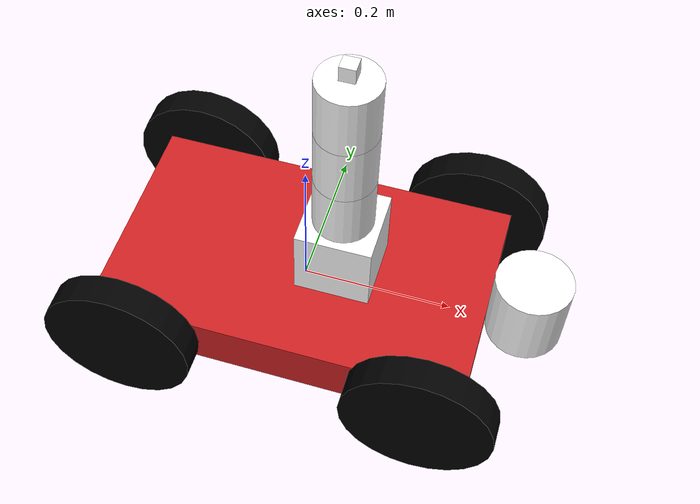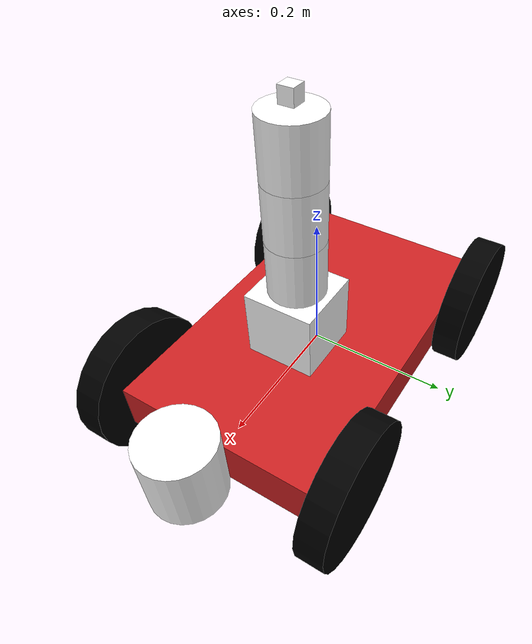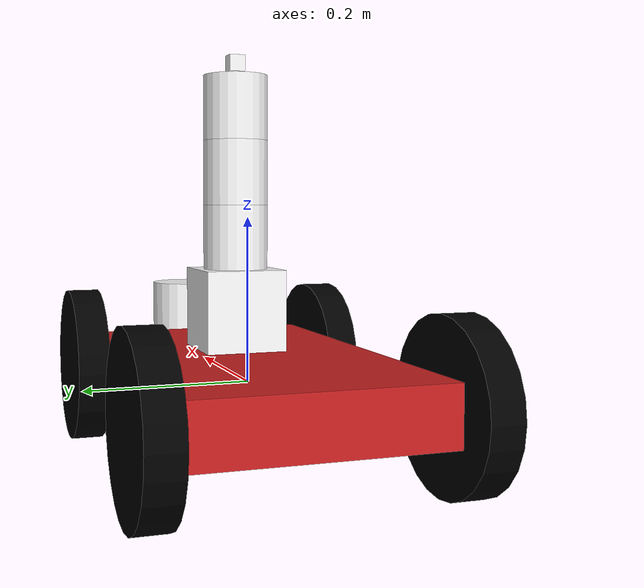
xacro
<?xml version="1.0" ?>
<robot name="m2wr" xmlns:xacro="https://www.ros.org/wiki/xacro" >

 <xacro:include filename="$(find surveillance_fsm_robot)/urdf/materials.xacro" />
 <xacro:include filename="$(find surveillance_fsm_robot)/urdf/m2wr_arm2.gazebo" />

 <xacro:macro name="cylinder_inertia" params="mass r l">
    <inertia ixx="${mass*(3*r*r+l*l)/12}" ixy = "0" ixz = "0"
                iyy="${mass*(3*r*r+l*l)/12}" iyz = "0" izz="${mass*(r*r)/2}" />
 </xacro:macro>

    	<xacro:property name="length_wheel" value="0.04" />
	<xacro:property name="radius_wheel" value="0.1" />

	<xacro:macro name="default_inertial" params="mass">
               <inertial>
                       <mass value="${mass}" />
                       <origin rpy="0 1.5707 1.5707" xyz="0 0 0"/>
                       <inertia ixx="0.000526666666667" ixy="0" ixz="0" iyy="0.000526666666667" iyz="0" izz="0.001"/>
               </inertial>
	</xacro:macro>

    <xacro:macro name="wheel_geometry">
		<geometry>
       			<cylinder length="${length_wheel}" radius="${radius_wheel}"/>
     	</geometry>
	</xacro:macro>

	  <link name="base_link">
    <!-- pose and inertial -->
    <pose>0 0 0.1 0 0 0</pose>
    <inertial>
      <mass value="5"/>
      <origin rpy="0 0 0" xyz="0 0 0.1"/>
      <inertia ixx="0.0395416666667" ixy="0" ixz="0" iyy="0.106208333333" iyz="0" izz="0.106208333333"/>
    </inertial>
    <!-- body -->
    <collision name="collision_chassis">
      <geometry>
        <box size="0.5 0.3 0.07"/>
      </geometry>
    </collision>
    <visual>
      <origin rpy="0 0 0" xyz="0 0 0"/>
      <geometry>
        <box size="0.5 0.3 0.07"/>
      </geometry>
      <material name="red"/>
    </visual>

  </link>
   <link name="link_right_wheel">
    <xacro:default_inertial mass="0.2"/>
    <collision name="link_right_wheel_collision">
      <origin rpy="0 1.5707 1.5707" xyz="0 0 0"/>
      <xacro:wheel_geometry />
    </collision>
    <visual name="link_right_wheel_visual">
      <origin rpy="0 1.5707 1.5707" xyz="0 0 0"/>
      <xacro:wheel_geometry />
      <material name="black"/>
    </visual>
  </link>

  <link name="link_right_wheel_back">
    <xacro:default_inertial mass="0.2"/>
    <collision name="link_right_wheel_collision_back">
      <origin rpy="0 1.5707 1.5707" xyz="0 0 0"/>
      <xacro:wheel_geometry />
    </collision>
    <visual name="link_right_wheel_visual_back">
      <origin rpy="0 1.5707 1.5707" xyz="0 0 0"/>
      <xacro:wheel_geometry />
      <material name="black"/>
    </visual>
  </link>

   <link name="link_left_wheel">
    <xacro:default_inertial mass="0.2"/>
    <collision name="link_left_wheel_collision">
      <origin rpy="0 1.5707 1.5707" xyz="0 0 0"/>
      <xacro:wheel_geometry />
    </collision>
    <visual name="link_left_wheel_visual">
      <origin rpy="0 1.5707 1.5707" xyz="0 0 0"/>
      <xacro:wheel_geometry />
      <material name="black"/>
    </visual>
  </link>

     <link name="link_left_wheel_back">
    <xacro:default_inertial mass="0.2"/>
    <collision name="link_left_wheel_collision_back">
      <origin rpy="0 1.5707 1.5707" xyz="0 0 0"/>
      <xacro:wheel_geometry />
    </collision>
    <visual name="link_left_wheel_visual_back">
      <origin rpy="0 1.5707 1.5707" xyz="0 0 0"/>
      <xacro:wheel_geometry />
      <material name="black"/>
    </visual>
  </link>

  <joint name="joint_right_wheel" type="continuous">
    <origin rpy="0 0 0" xyz="0.2 -0.17 0"/>
    <child link="link_right_wheel"/>
    <parent link="base_link"/>
    <axis rpy="0 0 0" xyz="0 1 0"/>
    <limit effort="10000" velocity="1000"/>
    <joint_properties damping="1.0" friction="1.0"/>
  </joint>

    <joint name="joint_right_wheel_back" type="continuous">
    <origin rpy="0 0 0" xyz="-0.2 -0.17 0"/>
    <child link="link_right_wheel_back"/>
    <parent link="base_link"/>
    <axis rpy="0 0 0" xyz="0 1 0"/>
    <limit effort="10000" velocity="1000"/>
    <joint_properties damping="1.0" friction="1.0"/>
  </joint>

  <joint name="joint_left_wheel" type="continuous">
    <origin rpy="0 0 0" xyz="0.2 0.17 0"/>
    <child link="link_left_wheel"/>
    <parent link="base_link"/>
    <axis rpy="0 0 0" xyz="0 1 0"/>
    <limit effort="10000" velocity="1000"/>
    <joint_properties damping="1.0" friction="1.0"/>
  </joint>

  <joint name="joint_left_wheel_back" type="continuous">
    <origin rpy="0 0 0" xyz="-0.2 0.17 0"/>
    <child link="link_left_wheel_back"/>
    <parent link="base_link"/>
    <axis rpy="0 0 0" xyz="0 1 0"/>
    <limit effort="10000" velocity="1000"/>
    <joint_properties damping="1.0" friction="1.0"/>
  </joint>

   <link name="laser">
    <inertial>
      <origin xyz="0 0 0" rpy="0 0 0" />
      <mass value="1" />
      <xacro:cylinder_inertia mass="1" r="0.05" l="0.1" />
    </inertial>

    <visual>
      <origin xyz="0 0 0" rpy="0 0 0" />
      <geometry>
        <cylinder radius="0.05" length="0.1"/>
      </geometry>
      <material name="white" />
    </visual>

    <collision>
      <origin xyz="0 0 0" rpy="0 0 0"/>
      <geometry>
        <cylinder radius="0.05" length="0.1"/>
      </geometry>
    </collision>
  </link>

  <joint name="joint_laser" type="fixed">
    <origin xyz="0.3 0 0.05" rpy="0 0 0"/>
    <parent link="base_link"/>
    <child link="laser"/>
  </joint>

<!--arm definition -->

  <link name="arm_base_link">
  	<inertial>
  		<mass value="0.1"/>
  		<origin xyz="0 0 0" rpy="0 0 0" />
  		<inertia ixx="0.0" ixy="0" ixz="0" iyy="0.0" iyz="0" izz="0.0"/>
  	</inertial>
  	<collision>
  	  <origin xyz="0 0 0" rpy="0 0 0"/>
      <geometry>
        <box size="0.1 0.1 0.1"/>
      </geometry>
  	</collision>
  	<visual>
  	  <origin xyz="0 0 0" rpy="0 0 0"/>
      <geometry>
        <box size="0.1 0.1 0.1"/>
      </geometry>
      <material name="white" />
  	</visual>
  </link>

  <joint name="arm_base_to_base" type="fixed">
  	<origin rpy="0 0 0" xyz="0.05 0 0.085"/>
  	<parent link="base_link"/>
  	<child link="arm_base_link"/>
  </joint>

  <link name="arm_link_01">
  	<inertial>
  		<mass value="0.0025"/>
  		<origin xyz="0 0 0" rpy="0 0 0" />
  		<inertia ixx="0.0" ixy="0" ixz="0" iyy="0.0" iyz="0" izz="0.0"/>
  	</inertial>
  	<collision>
  	  <origin xyz="0 0 0" rpy="0 0 0"/>
      <geometry>
        <cylinder radius="0.04" length="0.08"/>
      </geometry>
  	</collision>
  	<visual>
  	  <origin xyz="0 0 0" rpy="0 0 0"/>
      <geometry>
        <cylinder radius="0.04" length="0.08"/>
      </geometry>
      <material name="white" />
  	</visual>
  </link>

  <joint name="arm_joint_01" type="revolute">
  	<axis xyz="0 0 1"/>
  	<limit effort="1000.0" lower="-3.14" upper="3.14" velocity="0.2"/>
  	<origin rpy="0 0 0" xyz="0 0 0.09"/>
  	<parent link="arm_base_link"/>
  	<child link="arm_link_01"/>
  </joint>

    <link name="arm_link_02">
  	<inertial>
  		<mass value="0.0025"/>
  		<origin xyz="0 0 0" rpy="0 0 0" />
  		<inertia ixx="0.0" ixy="0" ixz="0" iyy="0.0" iyz="0" izz="0.0"/>
  	</inertial>
  	<collision>
  	  <origin xyz="0 0 0.04" rpy="0 0 0"/>
      <geometry>
        <cylinder radius="0.04" length="0.08"/>
      </geometry>
  	</collision>
  	<visual>
  	  <origin xyz="0 0 0.04" rpy="0 0 0"/>
      <geometry>
        <cylinder radius="0.04" length="0.08"/>
      </geometry>
      <material name="white" />
  	</visual>
  </link>

  <joint name="arm_joint_02" type="revolute">
  	<axis xyz="1 0 0"/>
  	<limit effort="1000.0" lower="-1.8" upper="1.8" velocity="0.2"/>
  	<origin rpy="0 0 0" xyz="0 0 0.04"/>
  	<parent link="arm_link_01"/>
  	<child link="arm_link_02"/>
  </joint>

      <link name="arm_link_03">
  	<inertial>
  		<mass value="0.0025"/>
  		<origin xyz="0 0 0" rpy="0 0 0" />
  		<inertia ixx="0.0" ixy="0" ixz="0" iyy="0.0" iyz="0" izz="0.0"/>
  	</inertial>
  	<collision>
  	  <origin xyz="0 0 0.04" rpy="0 0 0"/>
      <geometry>
        <cylinder radius="0.04" length="0.08"/>
      </geometry>
  	</collision>
  	<visual>
  	  <origin xyz="0 0 0.04" rpy="0 0 0"/>
      <geometry>
        <cylinder radius="0.04" length="0.08"/>
      </geometry>
      <material name="white" />
  	</visual>
  </link>

  <joint name="arm_joint_03" type="revolute">
  	<axis xyz="1 0 0"/>
  	<limit effort="1000.0" lower="-1.8" upper="1.8" velocity="0.2"/>
  	<origin rpy="0 0 0" xyz="0 0 0.08"/>
  	<parent link="arm_link_02"/>
  	<child link="arm_link_03"/>
  </joint>

  <!-- Camera -->
  <link name="camera_link">
    <collision>
      <origin xyz="0 0 0.025" rpy="0 0 0"/>
      <geometry>
        <box size="0.02 0.02 0.02"/>
      </geometry>
    </collision>

    <visual>
      <origin xyz="0 0 0.025" rpy="0 0 0"/>
      <geometry>
    <box size="0.02 0.02 0.02"/>
      </geometry>
      <material name="white"/>
    </visual>

    <inertial>
      <mass value="0" />
      <origin xyz="0 0 0" rpy="0 0 0"/>
      <inertia ixx="0" ixy="0" ixz="0" iyy="0" iyz="0" izz="0" />
    </inertial>
  </link>

  <joint name="camera_joint" type="fixed">
    <axis xyz="0 0 0" />
    <origin xyz="0 0.0 0.07" rpy="0 0 0"/>
    <parent link="arm_link_03"/>
    <child link="camera_link"/>
  </joint>

<transmission name="arm_joint_01_trans">
	<type>transmission_interface/SimpleTransmission</type>
	<joint name="arm_joint_01">
		<hardwareInterface>hardware_interface/EffortJointInterface</hardwareInterface>
	</joint>
	<actuator name="motor1">
		<hardwareInterface>hardware_interface/EffortJointInterface</hardwareInterface>
		<mechanicalInterface>1</mechanicalInterface>
	</actuator>
</transmission>

<transmission name="arm_joint_02_trans">
	<type>transmission_interface/SimpleTransmission</type>
	<joint name="arm_joint_02">
		<hardwareInterface>hardware_interface/EffortJointInterface</hardwareInterface>
	</joint>
	<actuator name="motor2">
		<hardwareInterface>hardware_interface/EffortJointInterface</hardwareInterface>
		<mechanicalInterface>1</mechanicalInterface>
	</actuator>
</transmission>

<transmission name="arm_joint_03_trans">
	<type>transmission_interface/SimpleTransmission</type>
	<joint name="arm_joint_03">
		<hardwareInterface>hardware_interface/EffortJointInterface</hardwareInterface>
	</joint>
	<actuator name="motor3">
		<hardwareInterface>hardware_interface/EffortJointInterface</hardwareInterface>
		<mechanicalInterface>1</mechanicalInterface>
	</actuator>
</transmission>

</robot>

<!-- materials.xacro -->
<robot name="m2wr" xmlns:xacro="https://www.ros.org/wiki/xacro" >
  <material name="black">
    <color rgba="0.0 0.0 0.0 1.0"/>
  </material>
  <material name="blue">
    <color rgba="0.203125 0.23828125 0.28515625 1.0"/>
  </material>
  <material name="green">
    <color rgba="0.0 0.8 0.0 1.0"/>
  </material>
  <material name="grey">
    <color rgba="0.2 0.2 0.2 1.0"/>
  </material>
  <material name="orange">
    <color rgba="1.0 0.423529411765 0.0392156862745 1.0"/>
  </material>
  <material name="brown">
    <color rgba="0.870588235294 0.811764705882 0.764705882353 1.0"/>
  </material>
  <material name="red">
    <color rgba="0.80078125 0.12890625 0.1328125 1.0"/>
  </material>
  <material name="white">
    <color rgba="1.0 1.0 1.0 1.0"/>
  </material>

</robot>
